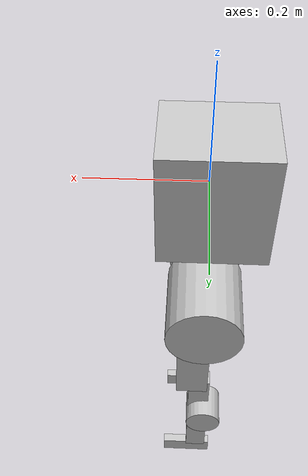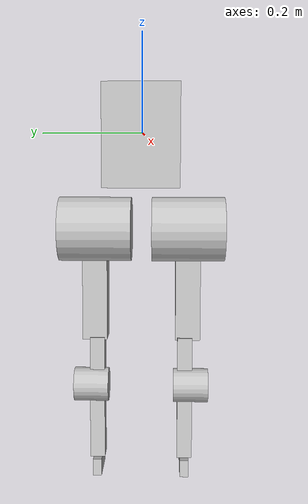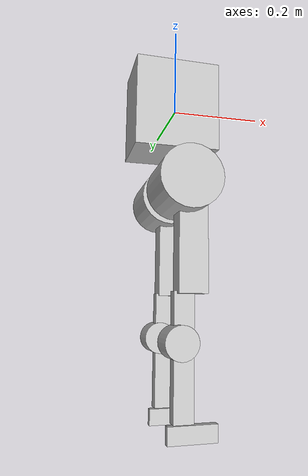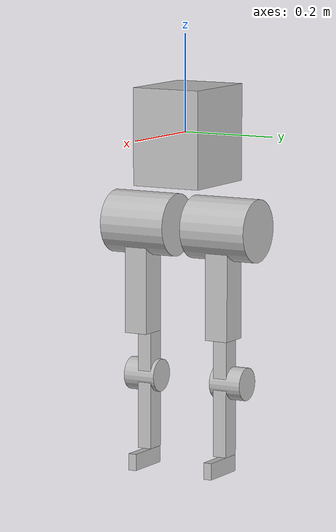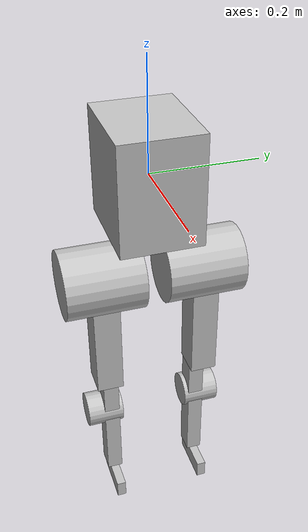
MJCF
<mujoco model="hunter">
  <compiler angle="radian"/>
  <worldbody>
    <geom size="0.092 0.075 0.1" pos="-0.01 0 -0.006" type="box" rgba="0.75294 0.75294 0.75294 1"/>
    <body name="left_hip_roll_link" pos="-0.002 0.09 -0.1035">
      <inertial pos="0.002501 5.3e-05 -0.002722" quat="0.472677 0.527005 0.495251 0.503556" mass="0.453728" diaginertia="0.000163063 0.000147076 8.18618e-05"/>
      <joint name="left_hip_roll_joint" pos="0 0 0" axis="1 0 0" limited="true" range="-0.2 0.5" frictionloss="0.2"/>
      <body name="left_hip_yaw_link" pos="0 -0.00016972 -0.0325">
        <inertial pos="-0.000273 0.043826 -0.058639" quat="0.7074 0.0648812 -0.0612384 0.70116" mass="0.925998" diaginertia="0.00166463 0.00123897 0.0010754"/>
        <joint name="left_hip_yaw_joint" pos="0 0 0" axis="0 0 1" limited="true" range="-0.5 1" frictionloss="0.2"/>
        <geom size="0.065 0.073" pos="0 0.0046 -0.057" quat="0.707388 0.706825 0 0" type="cylinder" rgba="0.75294 0.75294 0.75294 1"/>
        <body name="left_hip_pitch_link" pos="0 -0.01433 -0.0575">
          <inertial pos="0.003163 -0.022552 -0.027258" quat="0.678041 0.0230005 -0.0875592 0.729428" mass="1.39047" diaginertia="0.00722081 0.00694653 0.00181065"/>
          <joint name="left_hip_pitch_joint" pos="0 0 0" axis="0 1 0" limited="true" range="-0.8 1.2" frictionloss="0.2"/>
          <geom size="0.03 0.125 0.025" pos="0.015 0.02 -0.1" quat="0.707388 0.706825 0 0" type="box" rgba="0.75294 0.75294 0.75294 1"/>
          <body name="left_knee_link" pos="0 0.0145 -0.24">
            <inertial pos="-0.012044 0.006361 -0.093905" quat="0.696191 0.0388817 0.0714045 0.713237" mass="0.649518" diaginertia="0.00246473 0.00221871 0.000430556"/>
            <joint name="left_knee_joint" pos="0 0 0" axis="0 1 0" limited="true" range="0 1.5" frictionloss="0.2"/>
            <geom size="0.0205 0.125 0.015" pos="0 0 -0.105" quat="0.707388 0.706825 0 0" type="box" rgba="0.75294 0.75294 0.75294 1"/>
            <geom size="0.034 0.035" pos="-0.011 0.012 -0.079" quat="0.707388 0.706825 0 0" type="cylinder" rgba="0.75294 0.75294 0.75294 1"/>
            <body name="left_ankle_link" pos="0.005 0 -0.23995">
              <inertial pos="0.012435 0 -0.015511" mass="0.30265" diaginertia="0.0008 0.0008 0.0008"/>
              <joint name="left_ankle_joint" pos="0 0 0" axis="0 1 0" limited="true" range="-1.1 1.1" frictionloss="0.2"/>
              <geom size="0.05005 0.01725 0.00875" pos="0.01503 0 -0.0102" quat="0.707388 0.706825 0 0" type="box" rgba="0.75294 0.75294 0.75294 1"/>
            </body>
          </body>
        </body>
      </body>
    </body>
    <body name="right_hip_roll_link" pos="-0.002 -0.09 -0.1035">
      <inertial pos="0.002501 -5.3e-05 -0.002722" quat="0.503556 0.495251 0.527005 0.472677" mass="0.453728" diaginertia="0.000163063 0.000147076 8.18618e-05"/>
      <joint name="right_hip_roll_joint" pos="0 0 0" axis="1 0 0" limited="true" range="-0.5 0.2" frictionloss="0.2"/>
      <body name="right_hip_yaw_link" pos="0 0.00016972 -0.0325">
        <inertial pos="9e-05 -0.043826 -0.058639" quat="0.7074 0.0648812 -0.0612384 0.70116" mass="0.925998" diaginertia="0.00166463 0.00123897 0.0010754"/>
        <joint name="right_hip_yaw_joint" pos="0 0 0" axis="0 0 1" limited="true" range="-1 0.5" frictionloss="0.2"/>
        <geom size="0.065 0.073" pos="0 -0.0033 -0.057" quat="0.707388 0.706825 0 0" type="cylinder" rgba="0.75294 0.75294 0.75294 1"/>
        <body name="right_hip_pitch_link" pos="0 0.01633 -0.0575">
          <inertial pos="0.003311 0.02265 -0.027271" quat="0.734236 -0.0877978 0.023126 0.672795" mass="1.38862" diaginertia="0.00722344 0.00694292 0.00180965"/>
          <joint name="right_hip_pitch_joint" pos="0 0 0" axis="0 1 0" limited="true" range="-0.8 1.2" frictionloss="0.2"/>
          <geom size="0.03 0.125 0.025" pos="0.015 -0.02 -0.1" quat="0.707388 0.706825 0 0" type="box" rgba="0.75294 0.75294 0.75294 1"/>
          <body name="right_knee_link" pos="0 -0.0145 -0.24">
            <inertial pos="-0.007886 -0.007123 -0.088091" quat="0.589012 0.00853647 -0.018288 0.807872" mass="0.61472" diaginertia="0.00177827 0.00175932 0.00018341"/>
            <joint name="right_knee_joint" pos="0 0 0" axis="0 1 0" limited="true" range="0 1.5" frictionloss="0.2"/>
            <geom size="0.0205 0.125 0.015" pos="0 0 -0.105" quat="0.707388 0.706825 0 0" type="box" rgba="0.75294 0.75294 0.75294 1"/>
            <geom size="0.034 0.035" pos="-0.011 -0.012 -0.079" quat="0.707388 0.706825 0 0" type="cylinder" rgba="0.75294 0.75294 0.75294 1"/>
            <body name="right_ankle_link" pos="0.005 0 -0.23995">
              <inertial pos="0.012435 -0.0005 -0.015511" mass="0.30265" diaginertia="0.0008 0.0008 0.0008"/>
              <joint name="right_ankle_joint" pos="0 0 0" axis="0 1 0" limited="true" range="-1.1 1.1" frictionloss="0.2"/>
              <geom size="0.05005 0.01725 0.00875" pos="0.01503 0 -0.0102" quat="0.707388 0.706825 0 0" type="box" rgba="0.75294 0.75294 0.75294 1"/>
            </body>
          </body>
        </body>
      </body>
    </body>
  </worldbody>
</mujoco>
